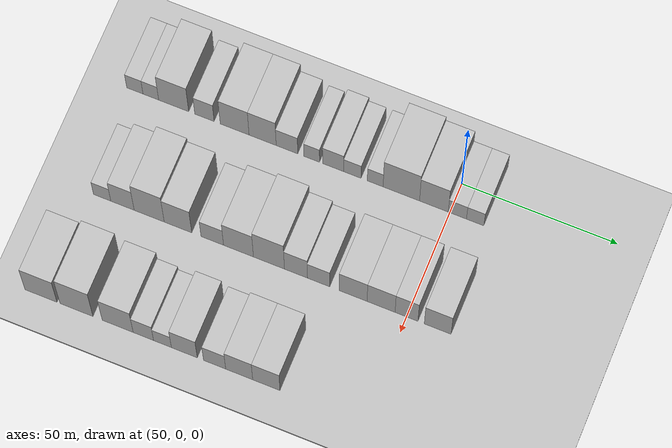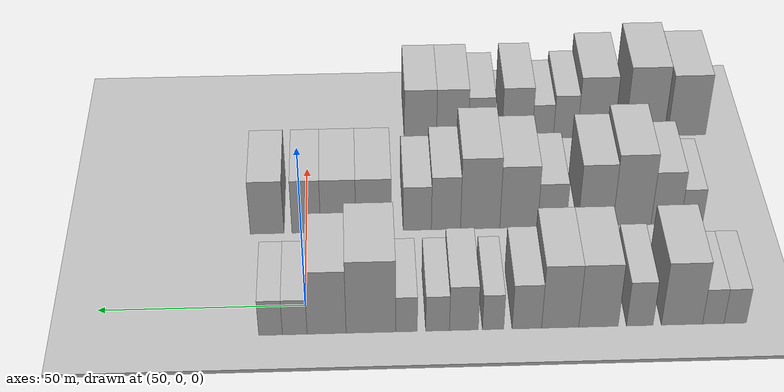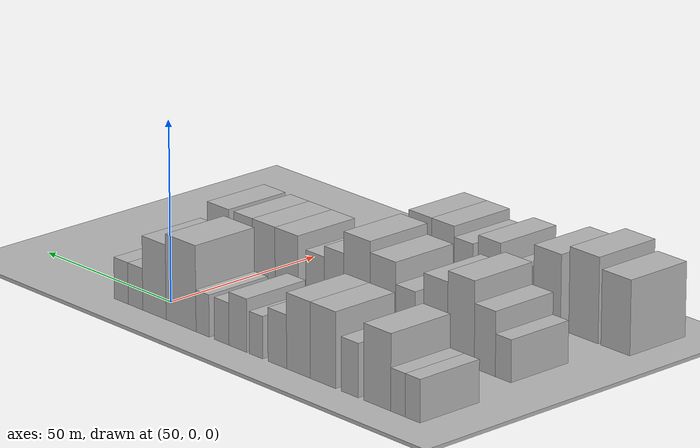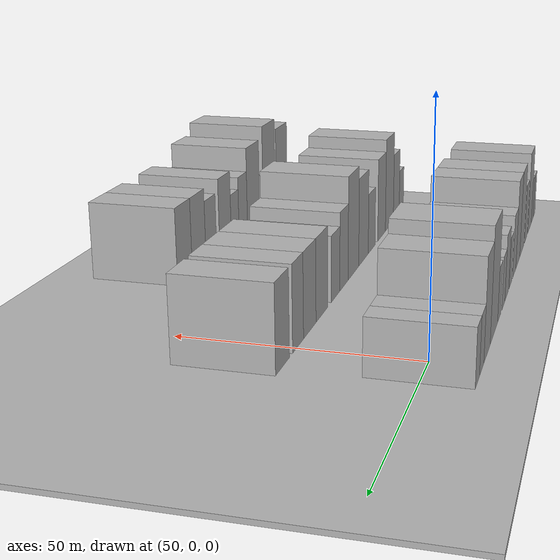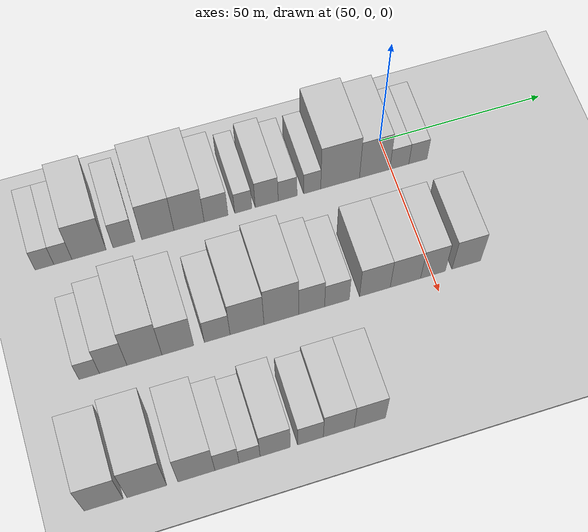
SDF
<sdf version="1.6">
 <world name="default">
  <include><name>ground_plane_1</name><uri>model://HANNAS_ground_plane</uri></include>
  <include>
   <name>ground_plane_2</name>
   <uri>model://HANNAS_ground_plane</uri>
   <pose>100 0 0  0 0 0</pose>
  </include>
  <model name="building_51">
   <static>1</static>
   <pose>50.0000 -102.8094 0 0.000000 0.000000 0.000000</pose>
   <link name="link">
    <pose>0 0 6.00 0 0 0</pose>
    <collision name="collision"><geometry><box><size>20.0000 5.3729 12.0000</size></box></geometry></collision>
    <visual name="visual">
     <cast_shadows>0</cast_shadows>
     <geometry><box><size>20.0000 5.3729 12.0000</size></box></geometry>
     <material>
      <script>
       <uri>model://HANNAS_wall/materials/scripts</uri>
       <uri>model://HANNAS_wall/materials/textures</uri>
       <name>vrc/HANNAS_wall</name>
      </script>
     </material>
    </visual>
   </link>
  </model>
  <model name="building_52">
   <static>1</static>
   <pose>50.0000 -97.5383 0 0.000000 0.000000 0.000000</pose>
   <link name="link">
    <pose>0 0 6.00 0 0 0</pose>
    <collision name="collision"><geometry><box><size>20.0000 5.1693 12.0000</size></box></geometry></collision>
    <visual name="visual">
     <cast_shadows>0</cast_shadows>
     <geometry><box><size>20.0000 5.1693 12.0000</size></box></geometry>
     <material>
      <script>
       <uri>model://HANNAS_wall/materials/scripts</uri>
       <uri>model://HANNAS_wall/materials/textures</uri>
       <name>vrc/HANNAS_wall</name>
      </script>
     </material>
    </visual>
   </link>
  </model>
  <model name="building_53">
   <static>1</static>
   <pose>50.0000 -90.0143 0 0.000000 0.000000 0.000000</pose>
   <link name="link">
    <pose>0 0 10.50 0 0 0</pose>
    <collision name="collision"><geometry><box><size>20.0000 9.8788 21.0000</size></box></geometry></collision>
    <visual name="visual">
     <cast_shadows>0</cast_shadows>
     <geometry><box><size>20.0000 9.8788 21.0000</size></box></geometry>
     <material>
      <script>
       <uri>model://HANNAS_wall/materials/scripts</uri>
       <uri>model://HANNAS_wall/materials/textures</uri>
       <name>vrc/HANNAS_wall</name>
      </script>
     </material>
    </visual>
   </link>
  </model>
  <model name="building_54">
   <static>1</static>
   <pose>50.0000 -79.8948 0 0.000000 0.000000 0.000000</pose>
   <link name="link">
    <pose>0 0 7.50 0 0 0</pose>
    <collision name="collision"><geometry><box><size>20.0000 6.3601 15.0000</size></box></geometry></collision>
    <visual name="visual">
     <cast_shadows>0</cast_shadows>
     <geometry><box><size>20.0000 6.3601 15.0000</size></box></geometry>
     <material>
      <script>
       <uri>model://HANNAS_wall/materials/scripts</uri>
       <uri>model://HANNAS_wall/materials/textures</uri>
       <name>vrc/HANNAS_wall</name>
      </script>
     </material>
    </visual>
   </link>
  </model>
  <model name="building_55">
   <static>1</static>
   <pose>50.0000 -69.9966 0 0.000000 0.000000 0.000000</pose>
   <link name="link">
    <pose>0 0 10.50 0 0 0</pose>
    <collision name="collision"><geometry><box><size>20.0000 9.4364 21.0000</size></box></geometry></collision>
    <visual name="visual">
     <cast_shadows>0</cast_shadows>
     <geometry><box><size>20.0000 9.4364 21.0000</size></box></geometry>
     <material>
      <script>
       <uri>model://HANNAS_wall/materials/scripts</uri>
       <uri>model://HANNAS_wall/materials/textures</uri>
       <name>vrc/HANNAS_wall</name>
      </script>
     </material>
    </visual>
   </link>
  </model>
  <model name="building_56">
   <static>1</static>
   <pose>50.0000 -60.8362 0 0.000000 0.000000 0.000000</pose>
   <link name="link">
    <pose>0 0 10.50 0 0 0</pose>
    <collision name="collision"><geometry><box><size>20.0000 8.8844 21.0000</size></box></geometry></collision>
    <visual name="visual">
     <cast_shadows>0</cast_shadows>
     <geometry><box><size>20.0000 8.8844 21.0000</size></box></geometry>
     <material>
      <script>
       <uri>model://HANNAS_wall/materials/scripts</uri>
       <uri>model://HANNAS_wall/materials/textures</uri>
       <name>vrc/HANNAS_wall</name>
      </script>
     </material>
    </visual>
   </link>
  </model>
  <model name="building_57">
   <static>1</static>
   <pose>50.0000 -52.8686 0 0.000000 0.000000 0.000000</pose>
   <link name="link">
    <pose>0 0 7.50 0 0 0</pose>
    <collision name="collision"><geometry><box><size>20.0000 7.0507 15.0000</size></box></geometry></collision>
    <visual name="visual">
     <cast_shadows>0</cast_shadows>
     <geometry><box><size>20.0000 7.0507 15.0000</size></box></geometry>
     <material>
      <script>
       <uri>model://HANNAS_wall/materials/scripts</uri>
       <uri>model://HANNAS_wall/materials/textures</uri>
       <name>vrc/HANNAS_wall</name>
      </script>
     </material>
    </visual>
   </link>
  </model>
  <model name="building_58">
   <static>1</static>
   <pose>50.0000 -44.7985 0 0.000000 0.000000 0.000000</pose>
   <link name="link">
    <pose>0 0 6.00 0 0 0</pose>
    <collision name="collision"><geometry><box><size>20.0000 5.0895 12.0000</size></box></geometry></collision>
    <visual name="visual">
     <cast_shadows>0</cast_shadows>
     <geometry><box><size>20.0000 5.0895 12.0000</size></box></geometry>
     <material>
      <script>
       <uri>model://HANNAS_wall/materials/scripts</uri>
       <uri>model://HANNAS_wall/materials/textures</uri>
       <name>vrc/HANNAS_wall</name>
      </script>
     </material>
    </visual>
   </link>
  </model>
  <model name="building_59">
   <static>1</static>
   <pose>50.0000 -37.8196 0 0.000000 0.000000 0.000000</pose>
   <link name="link">
    <pose>0 0 7.50 0 0 0</pose>
    <collision name="collision"><geometry><box><size>20.0000 6.8684 15.0000</size></box></geometry></collision>
    <visual name="visual">
     <cast_shadows>0</cast_shadows>
     <geometry><box><size>20.0000 6.8684 15.0000</size></box></geometry>
     <material>
      <script>
       <uri>model://HANNAS_wall/materials/scripts</uri>
       <uri>model://HANNAS_wall/materials/textures</uri>
       <name>vrc/HANNAS_wall</name>
      </script>
     </material>
    </visual>
   </link>
  </model>
  <model name="building_60">
   <static>1</static>
   <pose>50.0000 -31.5643 0 0.000000 0.000000 0.000000</pose>
   <link name="link">
    <pose>0 0 6.00 0 0 0</pose>
    <collision name="collision"><geometry><box><size>20.0000 5.6422 12.0000</size></box></geometry></collision>
    <visual name="visual">
     <cast_shadows>0</cast_shadows>
     <geometry><box><size>20.0000 5.6422 12.0000</size></box></geometry>
     <material>
      <script>
       <uri>model://HANNAS_wall/materials/scripts</uri>
       <uri>model://HANNAS_wall/materials/textures</uri>
       <name>vrc/HANNAS_wall</name>
      </script>
     </material>
    </visual>
   </link>
  </model>
  <model name="building_61">
   <static>1</static>
   <pose>50.0000 -24.1740 0 0.000000 0.000000 0.000000</pose>
   <link name="link">
    <pose>0 0 6.00 0 0 0</pose>
    <collision name="collision"><geometry><box><size>20.0000 5.1384 12.0000</size></box></geometry></collision>
    <visual name="visual">
     <cast_shadows>0</cast_shadows>
     <geometry><box><size>20.0000 5.1384 12.0000</size></box></geometry>
     <material>
      <script>
       <uri>model://HANNAS_wall/materials/scripts</uri>
       <uri>model://HANNAS_wall/materials/textures</uri>
       <name>vrc/HANNAS_wall</name>
      </script>
     </material>
    </visual>
   </link>
  </model>
  <model name="building_62">
   <static>1</static>
   <pose>50.0000 -15.7153 0 0.000000 0.000000 0.000000</pose>
   <link name="link">
    <pose>0 0 12.00 0 0 0</pose>
    <collision name="collision"><geometry><box><size>20.0000 11.7789 24.0000</size></box></geometry></collision>
    <visual name="visual">
     <cast_shadows>0</cast_shadows>
     <geometry><box><size>20.0000 11.7789 24.0000</size></box></geometry>
     <material>
      <script>
       <uri>model://HANNAS_wall/materials/scripts</uri>
       <uri>model://HANNAS_wall/materials/textures</uri>
       <name>vrc/HANNAS_wall</name>
      </script>
     </material>
    </visual>
   </link>
  </model>
  <model name="building_63">
   <static>1</static>
   <pose>50.0000 -5.1954 0 0.000000 0.000000 0.000000</pose>
   <link name="link">
    <pose>0 0 10.50 0 0 0</pose>
    <collision name="collision"><geometry><box><size>20.0000 9.2609 21.0000</size></box></geometry></collision>
    <visual name="visual">
     <cast_shadows>0</cast_shadows>
     <geometry><box><size>20.0000 9.2609 21.0000</size></box></geometry>
     <material>
      <script>
       <uri>model://HANNAS_wall/materials/scripts</uri>
       <uri>model://HANNAS_wall/materials/textures</uri>
       <name>vrc/HANNAS_wall</name>
      </script>
     </material>
    </visual>
   </link>
  </model>
  <model name="building_64">
   <static>1</static>
   <pose>50.0000 2.3669 0 0.000000 0.000000 0.000000</pose>
   <link name="link">
    <pose>0 0 6.00 0 0 0</pose>
    <collision name="collision"><geometry><box><size>20.0000 5.8637 12.0000</size></box></geometry></collision>
    <visual name="visual">
     <cast_shadows>0</cast_shadows>
     <geometry><box><size>20.0000 5.8637 12.0000</size></box></geometry>
     <material>
      <script>
       <uri>model://HANNAS_wall/materials/scripts</uri>
       <uri>model://HANNAS_wall/materials/textures</uri>
       <name>vrc/HANNAS_wall</name>
      </script>
     </material>
    </visual>
   </link>
  </model>
  <model name="building_65">
   <static>1</static>
   <pose>50.0000 8.0992 0 0.000000 0.000000 0.000000</pose>
   <link name="link">
    <pose>0 0 6.00 0 0 0</pose>
    <collision name="collision"><geometry><box><size>20.0000 5.6008 12.0000</size></box></geometry></collision>
    <visual name="visual">
     <cast_shadows>0</cast_shadows>
     <geometry><box><size>20.0000 5.6008 12.0000</size></box></geometry>
     <material>
      <script>
       <uri>model://HANNAS_wall/materials/scripts</uri>
       <uri>model://HANNAS_wall/materials/textures</uri>
       <name>vrc/HANNAS_wall</name>
      </script>
     </material>
    </visual>
   </link>
  </model>
  <model name="building_177">
   <static>1</static>
   <pose>85.0000 -98.4689 0 0.000000 0.000000 0.000000</pose>
   <link name="link">
    <pose>0 0 6.00 0 0 0</pose>
    <collision name="collision"><geometry><box><size>20.0000 5.6673 12.0000</size></box></geometry></collision>
    <visual name="visual">
     <cast_shadows>0</cast_shadows>
     <geometry><box><size>20.0000 5.6673 12.0000</size></box></geometry>
     <material>
      <script>
       <uri>model://HANNAS_wall/materials/scripts</uri>
       <uri>model://HANNAS_wall/materials/textures</uri>
       <name>vrc/HANNAS_wall</name>
      </script>
     </material>
    </visual>
   </link>
  </model>
  <model name="building_178">
   <static>1</static>
   <pose>85.0000 -91.8178 0 0.000000 0.000000 0.000000</pose>
   <link name="link">
    <pose>0 0 9.00 0 0 0</pose>
    <collision name="collision"><geometry><box><size>20.0000 7.6349 18.0000</size></box></geometry></collision>
    <visual name="visual">
     <cast_shadows>0</cast_shadows>
     <geometry><box><size>20.0000 7.6349 18.0000</size></box></geometry>
     <material>
      <script>
       <uri>model://HANNAS_wall/materials/scripts</uri>
       <uri>model://HANNAS_wall/materials/textures</uri>
       <name>vrc/HANNAS_wall</name>
      </script>
     </material>
    </visual>
   </link>
  </model>
  <model name="building_179">
   <static>1</static>
   <pose>85.0000 -83.1043 0 0.000000 0.000000 0.000000</pose>
   <link name="link">
    <pose>0 0 12.00 0 0 0</pose>
    <collision name="collision"><geometry><box><size>20.0000 9.7921 24.0000</size></box></geometry></collision>
    <visual name="visual">
     <cast_shadows>0</cast_shadows>
     <geometry><box><size>20.0000 9.7921 24.0000</size></box></geometry>
     <material>
      <script>
       <uri>model://HANNAS_wall/materials/scripts</uri>
       <uri>model://HANNAS_wall/materials/textures</uri>
       <name>vrc/HANNAS_wall</name>
      </script>
     </material>
    </visual>
   </link>
  </model>
  <model name="building_180">
   <static>1</static>
   <pose>85.0000 -73.7333 0 0.000000 0.000000 0.000000</pose>
   <link name="link">
    <pose>0 0 10.50 0 0 0</pose>
    <collision name="collision"><geometry><box><size>20.0000 8.9498 21.0000</size></box></geometry></collision>
    <visual name="visual">
     <cast_shadows>0</cast_shadows>
     <geometry><box><size>20.0000 8.9498 21.0000</size></box></geometry>
     <material>
      <script>
       <uri>model://HANNAS_wall/materials/scripts</uri>
       <uri>model://HANNAS_wall/materials/textures</uri>
       <name>vrc/HANNAS_wall</name>
      </script>
     </material>
    </visual>
   </link>
  </model>
  <model name="building_181">
   <static>1</static>
   <pose>85.0000 -62.6039 0 0.000000 0.000000 0.000000</pose>
   <link name="link">
    <pose>0 0 7.50 0 0 0</pose>
    <collision name="collision"><geometry><box><size>20.0000 7.3091 15.0000</size></box></geometry></collision>
    <visual name="visual">
     <cast_shadows>0</cast_shadows>
     <geometry><box><size>20.0000 7.3091 15.0000</size></box></geometry>
     <material>
      <script>
       <uri>model://HANNAS_wall/materials/scripts</uri>
       <uri>model://HANNAS_wall/materials/textures</uri>
       <name>vrc/HANNAS_wall</name>
      </script>
     </material>
    </visual>
   </link>
  </model>
  <model name="building_182">
   <static>1</static>
   <pose>85.0000 -54.1118 0 0.000000 0.000000 0.000000</pose>
   <link name="link">
    <pose>0 0 10.50 0 0 0</pose>
    <collision name="collision"><geometry><box><size>20.0000 9.6751 21.0000</size></box></geometry></collision>
    <visual name="visual">
     <cast_shadows>0</cast_shadows>
     <geometry><box><size>20.0000 9.6751 21.0000</size></box></geometry>
     <material>
      <script>
       <uri>model://HANNAS_wall/materials/scripts</uri>
       <uri>model://HANNAS_wall/materials/textures</uri>
       <name>vrc/HANNAS_wall</name>
      </script>
     </material>
    </visual>
   </link>
  </model>
  <model name="building_183">
   <static>1</static>
   <pose>85.0000 -44.2620 0 0.000000 0.000000 0.000000</pose>
   <link name="link">
    <pose>0 0 12.00 0 0 0</pose>
    <collision name="collision"><geometry><box><size>20.0000 10.0246 24.0000</size></box></geometry></collision>
    <visual name="visual">
     <cast_shadows>0</cast_shadows>
     <geometry><box><size>20.0000 10.0246 24.0000</size></box></geometry>
     <material>
      <script>
       <uri>model://HANNAS_wall/materials/scripts</uri>
       <uri>model://HANNAS_wall/materials/textures</uri>
       <name>vrc/HANNAS_wall</name>
      </script>
     </material>
    </visual>
   </link>
  </model>
  <model name="building_184">
   <static>1</static>
   <pose>85.0000 -35.5402 0 0.000000 0.000000 0.000000</pose>
   <link name="link">
    <pose>0 0 9.00 0 0 0</pose>
    <collision name="collision"><geometry><box><size>20.0000 7.4190 18.0000</size></box></geometry></collision>
    <visual name="visual">
     <cast_shadows>0</cast_shadows>
     <geometry><box><size>20.0000 7.4190 18.0000</size></box></geometry>
     <material>
      <script>
       <uri>model://HANNAS_wall/materials/scripts</uri>
       <uri>model://HANNAS_wall/materials/textures</uri>
       <name>vrc/HANNAS_wall</name>
      </script>
     </material>
    </visual>
   </link>
  </model>
  <model name="building_185">
   <static>1</static>
   <pose>85.0000 -28.2389 0 0.000000 0.000000 0.000000</pose>
   <link name="link">
    <pose>0 0 7.50 0 0 0</pose>
    <collision name="collision"><geometry><box><size>20.0000 7.1835 15.0000</size></box></geometry></collision>
    <visual name="visual">
     <cast_shadows>0</cast_shadows>
     <geometry><box><size>20.0000 7.1835 15.0000</size></box></geometry>
     <material>
      <script>
       <uri>model://HANNAS_wall/materials/scripts</uri>
       <uri>model://HANNAS_wall/materials/textures</uri>
       <name>vrc/HANNAS_wall</name>
      </script>
     </material>
    </visual>
   </link>
  </model>
  <model name="building_186">
   <static>1</static>
   <pose>85.0000 -17.1510 0 0.000000 0.000000 0.000000</pose>
   <link name="link">
    <pose>0 0 9.00 0 0 0</pose>
    <collision name="collision"><geometry><box><size>20.0000 8.9924 18.0000</size></box></geometry></collision>
    <visual name="visual">
     <cast_shadows>0</cast_shadows>
     <geometry><box><size>20.0000 8.9924 18.0000</size></box></geometry>
     <material>
      <script>
       <uri>model://HANNAS_wall/materials/scripts</uri>
       <uri>model://HANNAS_wall/materials/textures</uri>
       <name>vrc/HANNAS_wall</name>
      </script>
     </material>
    </visual>
   </link>
  </model>
  <model name="building_187">
   <static>1</static>
   <pose>85.0000 -8.1791 0 0.000000 0.000000 0.000000</pose>
   <link name="link">
    <pose>0 0 9.00 0 0 0</pose>
    <collision name="collision"><geometry><box><size>20.0000 8.9515 18.0000</size></box></geometry></collision>
    <visual name="visual">
     <cast_shadows>0</cast_shadows>
     <geometry><box><size>20.0000 8.9515 18.0000</size></box></geometry>
     <material>
      <script>
       <uri>model://HANNAS_wall/materials/scripts</uri>
       <uri>model://HANNAS_wall/materials/textures</uri>
       <name>vrc/HANNAS_wall</name>
      </script>
     </material>
    </visual>
   </link>
  </model>
  <model name="building_188">
   <static>1</static>
   <pose>85.0000 -0.0435 0 0.000000 0.000000 0.000000</pose>
   <link name="link">
    <pose>0 0 9.00 0 0 0</pose>
    <collision name="collision"><geometry><box><size>20.0000 7.3195 18.0000</size></box></geometry></collision>
    <visual name="visual">
     <cast_shadows>0</cast_shadows>
     <geometry><box><size>20.0000 7.3195 18.0000</size></box></geometry>
     <material>
      <script>
       <uri>model://HANNAS_wall/materials/scripts</uri>
       <uri>model://HANNAS_wall/materials/textures</uri>
       <name>vrc/HANNAS_wall</name>
      </script>
     </material>
    </visual>
   </link>
  </model>
  <model name="building_189">
   <static>1</static>
   <pose>85.0000 9.8961 0 0.000000 0.000000 0.000000</pose>
   <link name="link">
    <pose>0 0 9.00 0 0 0</pose>
    <collision name="collision"><geometry><box><size>20.0000 8.5598 18.0000</size></box></geometry></collision>
    <visual name="visual">
     <cast_shadows>0</cast_shadows>
     <geometry><box><size>20.0000 8.5598 18.0000</size></box></geometry>
     <material>
      <script>
       <uri>model://HANNAS_wall/materials/scripts</uri>
       <uri>model://HANNAS_wall/materials/textures</uri>
       <name>vrc/HANNAS_wall</name>
      </script>
     </material>
    </visual>
   </link>
  </model>
  <model name="building_302">
   <static>1</static>
   <pose>120.0000 -103.1380 0 0.000000 0.000000 0.000000</pose>
   <link name="link">
    <pose>0 0 10.50 0 0 0</pose>
    <collision name="collision"><geometry><box><size>20.0000 10.3689 21.0000</size></box></geometry></collision>
    <visual name="visual">
     <cast_shadows>0</cast_shadows>
     <geometry><box><size>20.0000 10.3689 21.0000</size></box></geometry>
     <material>
      <script>
       <uri>model://HANNAS_wall/materials/scripts</uri>
       <uri>model://HANNAS_wall/materials/textures</uri>
       <name>vrc/HANNAS_wall</name>
      </script>
     </material>
    </visual>
   </link>
  </model>
  <model name="building_303">
   <static>1</static>
   <pose>120.0000 -91.6294 0 0.000000 0.000000 0.000000</pose>
   <link name="link">
    <pose>0 0 12.00 0 0 0</pose>
    <collision name="collision"><geometry><box><size>20.0000 10.6484 24.0000</size></box></geometry></collision>
    <visual name="visual">
     <cast_shadows>0</cast_shadows>
     <geometry><box><size>20.0000 10.6484 24.0000</size></box></geometry>
     <material>
      <script>
       <uri>model://HANNAS_wall/materials/scripts</uri>
       <uri>model://HANNAS_wall/materials/textures</uri>
       <name>vrc/HANNAS_wall</name>
      </script>
     </material>
    </visual>
   </link>
  </model>
  <model name="building_304">
   <static>1</static>
   <pose>120.0000 -78.3010 0 0.000000 0.000000 0.000000</pose>
   <link name="link">
    <pose>0 0 10.50 0 0 0</pose>
    <collision name="collision"><geometry><box><size>20.0000 10.0083 21.0000</size></box></geometry></collision>
    <visual name="visual">
     <cast_shadows>0</cast_shadows>
     <geometry><box><size>20.0000 10.0083 21.0000</size></box></geometry>
     <material>
      <script>
       <uri>model://HANNAS_wall/materials/scripts</uri>
       <uri>model://HANNAS_wall/materials/textures</uri>
       <name>vrc/HANNAS_wall</name>
      </script>
     </material>
    </visual>
   </link>
  </model>
  <model name="building_305">
   <static>1</static>
   <pose>120.0000 -70.0165 0 0.000000 0.000000 0.000000</pose>
   <link name="link">
    <pose>0 0 7.50 0 0 0</pose>
    <collision name="collision"><geometry><box><size>20.0000 6.5608 15.0000</size></box></geometry></collision>
    <visual name="visual">
     <cast_shadows>0</cast_shadows>
     <geometry><box><size>20.0000 6.5608 15.0000</size></box></geometry>
     <material>
      <script>
       <uri>model://HANNAS_wall/materials/scripts</uri>
       <uri>model://HANNAS_wall/materials/textures</uri>
       <name>vrc/HANNAS_wall</name>
      </script>
     </material>
    </visual>
   </link>
  </model>
  <model name="building_306">
   <static>1</static>
   <pose>120.0000 -63.8612 0 0.000000 0.000000 0.000000</pose>
   <link name="link">
    <pose>0 0 6.00 0 0 0</pose>
    <collision name="collision"><geometry><box><size>20.0000 5.7497 12.0000</size></box></geometry></collision>
    <visual name="visual">
     <cast_shadows>0</cast_shadows>
     <geometry><box><size>20.0000 5.7497 12.0000</size></box></geometry>
     <material>
      <script>
       <uri>model://HANNAS_wall/materials/scripts</uri>
       <uri>model://HANNAS_wall/materials/textures</uri>
       <name>vrc/HANNAS_wall</name>
      </script>
     </material>
    </visual>
   </link>
  </model>
  <model name="building_307">
   <static>1</static>
   <pose>120.0000 -56.8331 0 0.000000 0.000000 0.000000</pose>
   <link name="link">
    <pose>0 0 9.00 0 0 0</pose>
    <collision name="collision"><geometry><box><size>20.0000 8.3064 18.0000</size></box></geometry></collision>
    <visual name="visual">
     <cast_shadows>0</cast_shadows>
     <geometry><box><size>20.0000 8.3064 18.0000</size></box></geometry>
     <material>
      <script>
       <uri>model://HANNAS_wall/materials/scripts</uri>
       <uri>model://HANNAS_wall/materials/textures</uri>
       <name>vrc/HANNAS_wall</name>
      </script>
     </material>
    </visual>
   </link>
  </model>
  <model name="building_308">
   <static>1</static>
   <pose>120.0000 -47.1282 0 0.000000 0.000000 0.000000</pose>
   <link name="link">
    <pose>0 0 7.50 0 0 0</pose>
    <collision name="collision"><geometry><box><size>20.0000 7.1034 15.0000</size></box></geometry></collision>
    <visual name="visual">
     <cast_shadows>0</cast_shadows>
     <geometry><box><size>20.0000 7.1034 15.0000</size></box></geometry>
     <material>
      <script>
       <uri>model://HANNAS_wall/materials/scripts</uri>
       <uri>model://HANNAS_wall/materials/textures</uri>
       <name>vrc/HANNAS_wall</name>
      </script>
     </material>
    </visual>
   </link>
  </model>
  <model name="building_309">
   <static>1</static>
   <pose>120.0000 -39.2617 0 0.000000 0.000000 0.000000</pose>
   <link name="link">
    <pose>0 0 9.00 0 0 0</pose>
    <collision name="collision"><geometry><box><size>20.0000 8.6298 18.0000</size></box></geometry></collision>
    <visual name="visual">
     <cast_shadows>0</cast_shadows>
     <geometry><box><size>20.0000 8.6298 18.0000</size></box></geometry>
     <material>
      <script>
       <uri>model://HANNAS_wall/materials/scripts</uri>
       <uri>model://HANNAS_wall/materials/textures</uri>
       <name>vrc/HANNAS_wall</name>
      </script>
     </material>
    </visual>
   </link>
  </model>
  <model name="building_310">
   <static>1</static>
   <pose>120.0000 -30.5913 0 0.000000 0.000000 0.000000</pose>
   <link name="link">
    <pose>0 0 9.00 0 0 0</pose>
    <collision name="collision"><geometry><box><size>20.0000 8.7109 18.0000</size></box></geometry></collision>
    <visual name="visual">
     <cast_shadows>0</cast_shadows>
     <geometry><box><size>20.0000 8.7109 18.0000</size></box></geometry>
     <material>
      <script>
       <uri>model://HANNAS_wall/materials/scripts</uri>
       <uri>model://HANNAS_wall/materials/textures</uri>
       <name>vrc/HANNAS_wall</name>
      </script>
     </material>
    </visual>
   </link>
  </model>
 </world>
</sdf>
